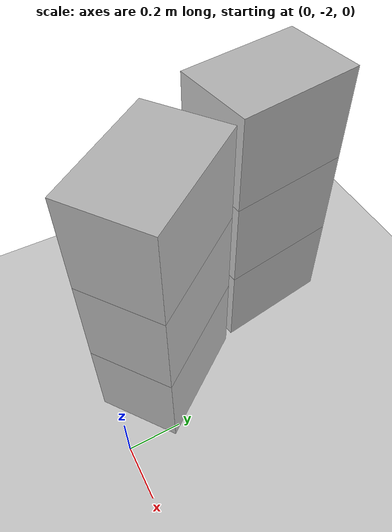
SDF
<sdf version="1.6">
 <world name="default">
  <model name="ground_plane">
   <static>1</static>
   <link name="link">
    <collision name="collision">
     <geometry><plane><normal>0 0 1</normal><size>100 100</size></plane></geometry>
     <surface>
      <contact><collide_bitmask>65535</collide_bitmask></contact>
      <friction><ode><mu>100</mu><mu2>50</mu2></ode></friction>
     </surface>
    </collision>
    <visual name="visual">
     <cast_shadows>0</cast_shadows>
     <geometry><plane><normal>0 0 1</normal><size>100 100</size></plane></geometry>
     <material>
      <script><uri>file://media/materials/scripts/gazebo.material</uri><name>Gazebo/Grey</name></script>
     </material>
    </visual>
   </link>
  </model>
  <model name="1_stack_1">
   <pose>-0.453727 -1.21476 0 0 -0 -2.98576</pose>
   <static>1</static>
   <link name="link_0">
    <collision name="collision_0">
     <pose>0 0 0.18 0 -0 3.14</pose>
     <geometry><box><size>0.31 0.465 0.36</size></box></geometry>
    </collision>
    <visual name="visual_0">
     <pose>0 0 0.18 0 -0 3.14</pose>
     <geometry><mesh><uri>model://L-corridor_curve_real/meshes/exact_blue_circle_border.dae</uri></mesh></geometry>
    </visual>
   </link>
   <link name="link_1">
    <collision name="collision_1">
     <pose>0 0 0.54 0 -0 3.14</pose>
     <geometry><box><size>0.31 0.465 0.36</size></box></geometry>
    </collision>
    <visual name="visual_1">
     <pose>0 0 0.54 0 -0 3.14</pose>
     <geometry><mesh><uri>model://L-corridor_curve_real/meshes/exact_red_circle_border.dae</uri></mesh></geometry>
    </visual>
   </link>
   <link name="link_2">
    <collision name="collision_2">
     <pose>0 0 0.9 0 -0 3.14</pose>
     <geometry><box><size>0.31 0.465 0.36</size></box></geometry>
    </collision>
    <visual name="visual_2">
     <pose>0 0 0.9 0 -0 3.14</pose>
     <geometry>
      <mesh><uri>model://L-corridor_curve_real/meshes/exact_green_circle_border.dae</uri></mesh>
     </geometry>
    </visual>
   </link>
  </model>
  <model name="1_stack_2">
   <pose>-0.236038 -1.73275 0 0 -0 -2.4998</pose>
   <static>1</static>
   <link name="link_0">
    <collision name="collision_0">
     <pose>0 0 0.18 0 -0 3.14</pose>
     <geometry><box><size>0.31 0.465 0.36</size></box></geometry>
    </collision>
    <visual name="visual_0">
     <pose>0 0 0.18 0 -0 3.14</pose>
     <geometry><mesh><uri>model://L-corridor_curve_real/meshes/exact_blue_circle_border.dae</uri></mesh></geometry>
    </visual>
   </link>
   <link name="link_1">
    <collision name="collision_1">
     <pose>0 0 0.54 0 -0 3.14</pose>
     <geometry><box><size>0.31 0.465 0.36</size></box></geometry>
    </collision>
    <visual name="visual_1">
     <pose>0 0 0.54 0 -0 3.14</pose>
     <geometry><mesh><uri>model://L-corridor_curve_real/meshes/exact_red_circle_border.dae</uri></mesh></geometry>
    </visual>
   </link>
   <link name="link_2">
    <collision name="collision_2">
     <pose>0 0 0.9 0 -0 3.14</pose>
     <geometry><box><size>0.31 0.465 0.36</size></box></geometry>
    </collision>
    <visual name="visual_2">
     <pose>0 0 0.9 0 -0 3.14</pose>
     <geometry>
      <mesh><uri>model://L-corridor_curve_real/meshes/exact_green_circle_border.dae</uri></mesh>
     </geometry>
    </visual>
   </link>
  </model>
 </world>
</sdf>
